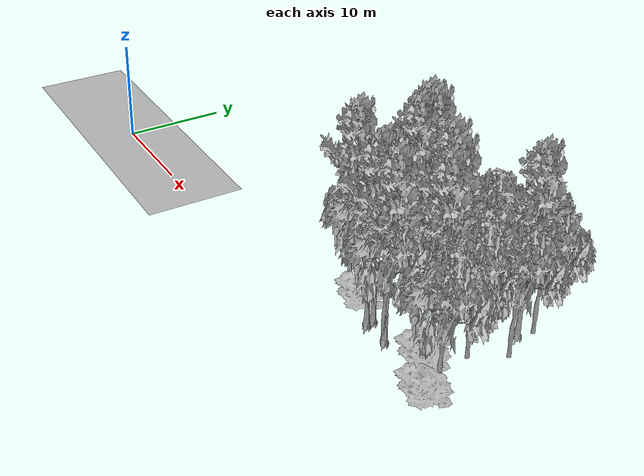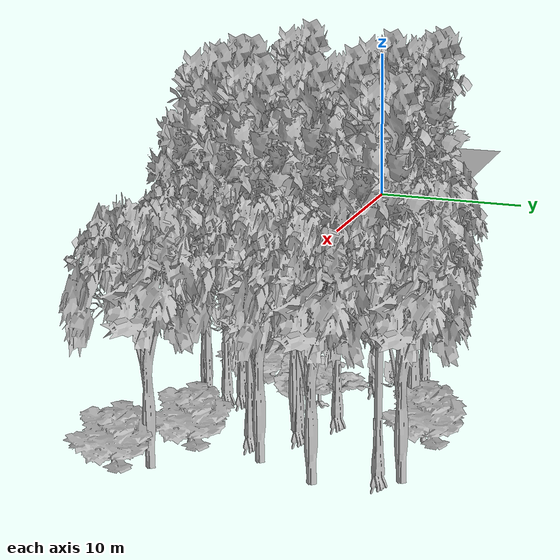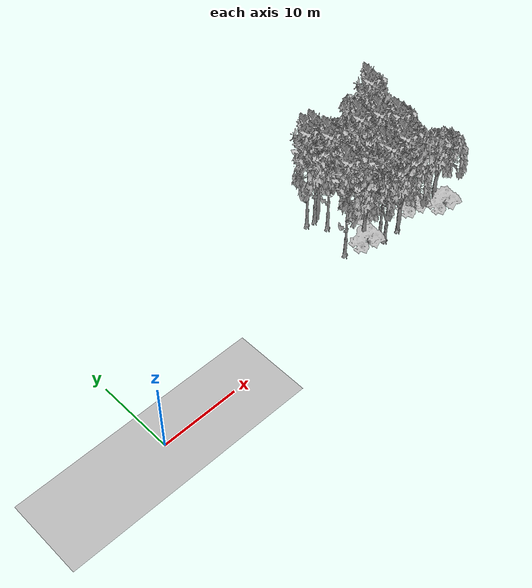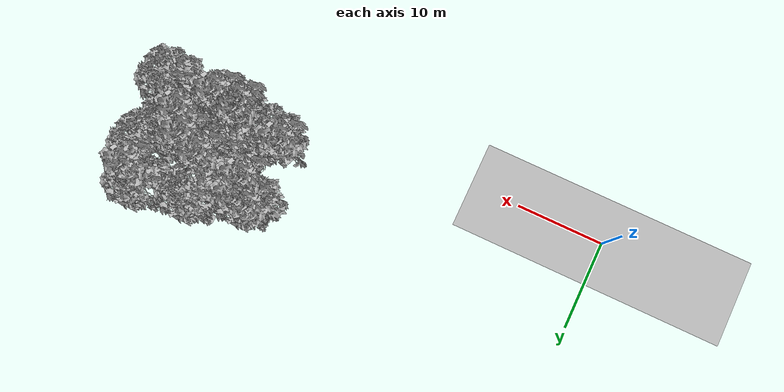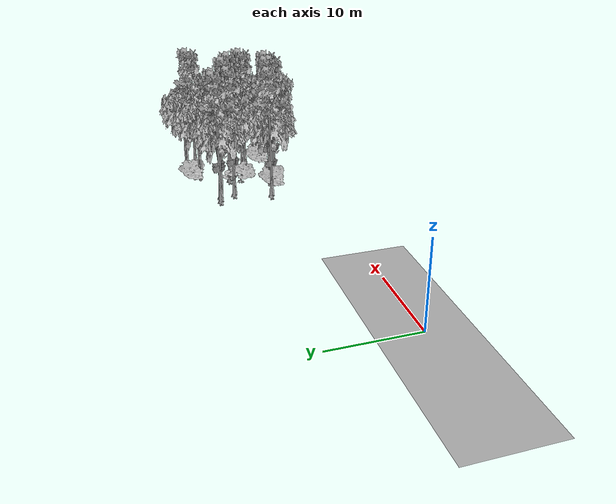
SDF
<sdf version="1.7">
 <world name="default">
  <model name="ground_plane">
   <static>1</static>
   <link name="link">
    <collision name="collision">
     <pose>-50 0 0 0 -0 0</pose>
     <geometry><plane><normal>0 0 1</normal><size>100 100</size></plane></geometry>
     <surface><contact><ode><min_depth>0.01</min_depth><max_vel>0</max_vel></ode></contact></surface>
    </collision>
    <visual name="grass">
     <cast_shadows>0</cast_shadows>
     <geometry>
      <mesh>
       <scale>0.5814285714285714 0.18142857142857144 0.1</scale>
       <uri>file://grass_plane/meshes/grass_plane.dae</uri>
      </mesh>
     </geometry>
    </visual>
   </link>
  </model>
  <model name="Tree 5">
   <static>1</static>
   <pose>36.21630514174534 5.332473233112477 0 1.57079 -0 0</pose>
   <link name="link">
    <collision name="collision">
     <geometry><mesh><scale>3.5 5 3.5</scale><uri>model://tree_2/meshes/tree_2.obj</uri></mesh></geometry>
    </collision>
    <visual name="visual">
     <geometry><mesh><scale>3.5 5 3.5</scale><uri>model://tree_2/meshes/tree_2.obj</uri></mesh></geometry>
    </visual>
   </link>
  </model>
  <model name="Tree 15">
   <static>1</static>
   <pose>45.743909206577584 13.819128659880295 0 1.57079 -0 0</pose>
   <link name="link">
    <collision name="collision">
     <geometry><mesh><scale>3.5 5 3.5</scale><uri>model://tree_9/meshes/tree_9.obj</uri></mesh></geometry>
    </collision>
    <visual name="visual">
     <geometry><mesh><scale>3.5 5 3.5</scale><uri>model://tree_9/meshes/tree_9.obj</uri></mesh></geometry>
    </visual>
   </link>
  </model>
  <model name="Tree 41">
   <static>1</static>
   <pose>38.863710387850574 4.051645350260188 0 1.57079 -0 0</pose>
   <link name="link">
    <collision name="collision">
     <geometry><mesh><scale>3.5 5 3.5</scale><uri>model://tree_9/meshes/tree_9.obj</uri></mesh></geometry>
    </collision>
    <visual name="visual">
     <geometry><mesh><scale>3.5 5 3.5</scale><uri>model://tree_9/meshes/tree_9.obj</uri></mesh></geometry>
    </visual>
   </link>
  </model>
  <model name="Tree 45">
   <static>1</static>
   <pose>47.43371381314944 11.400774031397113 0 1.57079 -0 0</pose>
   <link name="link">
    <collision name="collision">
     <geometry><mesh><scale>3.5 5 3.5</scale><uri>model://tree_2/meshes/tree_2.obj</uri></mesh></geometry>
    </collision>
    <visual name="visual">
     <geometry><mesh><scale>3.5 5 3.5</scale><uri>model://tree_2/meshes/tree_2.obj</uri></mesh></geometry>
    </visual>
   </link>
  </model>
  <model name="Tree 46">
   <static>1</static>
   <pose>47.99540978927405 4.198214944029758 0 1.57079 -0 0</pose>
   <link name="link">
    <collision name="collision">
     <geometry><mesh><scale>3.5 5 3.5</scale><uri>model://tree_2/meshes/tree_2.obj</uri></mesh></geometry>
    </collision>
    <visual name="visual">
     <geometry><mesh><scale>3.5 5 3.5</scale><uri>model://tree_2/meshes/tree_2.obj</uri></mesh></geometry>
    </visual>
   </link>
  </model>
  <model name="Tree 65">
   <static>1</static>
   <pose>40.04931685662842 8.233871836158535 0 1.57079 -0 0</pose>
   <link name="link">
    <collision name="collision">
     <geometry><mesh><scale>3.5 5 3.5</scale><uri>model://tree_2/meshes/tree_2.obj</uri></mesh></geometry>
    </collision>
    <visual name="visual">
     <geometry><mesh><scale>3.5 5 3.5</scale><uri>model://tree_2/meshes/tree_2.obj</uri></mesh></geometry>
    </visual>
   </link>
  </model>
  <model name="Tree 84">
   <static>1</static>
   <pose>41.149014207927564 4.016690915062323 0 1.57079 -0 0</pose>
   <link name="link">
    <collision name="collision">
     <geometry><mesh><scale>3.5 5 3.5</scale><uri>model://tree_2/meshes/tree_2.obj</uri></mesh></geometry>
    </collision>
    <visual name="visual">
     <geometry><mesh><scale>3.5 5 3.5</scale><uri>model://tree_2/meshes/tree_2.obj</uri></mesh></geometry>
    </visual>
   </link>
  </model>
  <model name="Tree 88">
   <static>1</static>
   <pose>36.313175300013626 4.6640929231290755 0 1.57079 -0 0</pose>
   <link name="link">
    <collision name="collision">
     <geometry><mesh><scale>3 2 3</scale><uri>model://tree_3/meshes/tree_3.obj</uri></mesh></geometry>
    </collision>
    <visual name="visual">
     <geometry><mesh><scale>3 2 3</scale><uri>model://tree_3/meshes/tree_3.obj</uri></mesh></geometry>
    </visual>
   </link>
  </model>
  <model name="Tree 101">
   <static>1</static>
   <pose>42.22255837407289 8.932550092493571 0 1.57079 -0 0</pose>
   <link name="link">
    <collision name="collision">
     <geometry><mesh><scale>3.5 5 3.5</scale><uri>model://tree_9/meshes/tree_9.obj</uri></mesh></geometry>
    </collision>
    <visual name="visual">
     <geometry><mesh><scale>3.5 5 3.5</scale><uri>model://tree_9/meshes/tree_9.obj</uri></mesh></geometry>
    </visual>
   </link>
  </model>
  <model name="Tree 116">
   <static>1</static>
   <pose>33.75630688984256 12.523811955233146 0 1.57079 -0 0</pose>
   <link name="link">
    <collision name="collision">
     <geometry><mesh><scale>3.5 5 3.5</scale><uri>model://tree_9/meshes/tree_9.obj</uri></mesh></geometry>
    </collision>
    <visual name="visual">
     <geometry><mesh><scale>3.5 5 3.5</scale><uri>model://tree_9/meshes/tree_9.obj</uri></mesh></geometry>
    </visual>
   </link>
  </model>
  <model name="Tree 117">
   <static>1</static>
   <pose>43.53722144878333 7.089932362946783 0 1.57079 -0 0</pose>
   <link name="link">
    <collision name="collision">
     <geometry><mesh><scale>3.5 5 3.5</scale><uri>model://tree_9/meshes/tree_9.obj</uri></mesh></geometry>
    </collision>
    <visual name="visual">
     <geometry><mesh><scale>3.5 5 3.5</scale><uri>model://tree_9/meshes/tree_9.obj</uri></mesh></geometry>
    </visual>
   </link>
  </model>
  <model name="Tree 121">
   <static>1</static>
   <pose>40.674056603506884 13.954637770481654 0 1.57079 -0 0</pose>
   <link name="link">
    <collision name="collision">
     <geometry><mesh><scale>3.5 5 3.5</scale><uri>model://tree_2/meshes/tree_2.obj</uri></mesh></geometry>
    </collision>
    <visual name="visual">
     <geometry><mesh><scale>3.5 5 3.5</scale><uri>model://tree_2/meshes/tree_2.obj</uri></mesh></geometry>
    </visual>
   </link>
  </model>
  <model name="Tree 134">
   <static>1</static>
   <pose>34.9317361453118 12.344962153525117 0 1.57079 -0 0</pose>
   <link name="link">
    <collision name="collision">
     <geometry><mesh><scale>3.5 5 3.5</scale><uri>model://tree_9/meshes/tree_9.obj</uri></mesh></geometry>
    </collision>
    <visual name="visual">
     <geometry><mesh><scale>3.5 5 3.5</scale><uri>model://tree_9/meshes/tree_9.obj</uri></mesh></geometry>
    </visual>
   </link>
  </model>
  <model name="Tree 160">
   <static>1</static>
   <pose>42.19134666389519 8.791090269132138 0 1.57079 -0 0</pose>
   <link name="link">
    <collision name="collision">
     <geometry><mesh><scale>3.5 5 3.5</scale><uri>model://tree_2/meshes/tree_2.obj</uri></mesh></geometry>
    </collision>
    <visual name="visual">
     <geometry><mesh><scale>3.5 5 3.5</scale><uri>model://tree_2/meshes/tree_2.obj</uri></mesh></geometry>
    </visual>
   </link>
  </model>
  <model name="Tree 162">
   <static>1</static>
   <pose>41.29631861945818 4.112955242964116 0 1.57079 -0 0</pose>
   <link name="link">
    <collision name="collision">
     <geometry><mesh><scale>3.5 5 3.5</scale><uri>model://tree_9/meshes/tree_9.obj</uri></mesh></geometry>
    </collision>
    <visual name="visual">
     <geometry><mesh><scale>3.5 5 3.5</scale><uri>model://tree_9/meshes/tree_9.obj</uri></mesh></geometry>
    </visual>
   </link>
  </model>
  <model name="Tree 163">
   <static>1</static>
   <pose>35.25127912208559 12.166618940330412 0 1.57079 -0 0</pose>
   <link name="link">
    <collision name="collision">
     <geometry><mesh><scale>3.5 5 3.5</scale><uri>model://tree_2/meshes/tree_2.obj</uri></mesh></geometry>
    </collision>
    <visual name="visual">
     <geometry><mesh><scale>3.5 5 3.5</scale><uri>model://tree_2/meshes/tree_2.obj</uri></mesh></geometry>
    </visual>
   </link>
  </model>
  <model name="Tree 171">
   <static>1</static>
   <pose>38.83019356078249 8.770595952194704 0 1.57079 -0 0</pose>
   <link name="link">
    <collision name="collision">
     <geometry><mesh><scale>4 2.5 4</scale><uri>model://tree_1/meshes/tree_1.obj</uri></mesh></geometry>
    </collision>
    <visual name="visual">
     <geometry><mesh><scale>4 2.5 4</scale><uri>model://tree_1/meshes/tree_1.obj</uri></mesh></geometry>
    </visual>
   </link>
  </model>
  <model name="Tree 194">
   <static>1</static>
   <pose>40.02133976003418 10.060795207848319 0 1.57079 -0 0</pose>
   <link name="link">
    <collision name="collision">
     <geometry><mesh><scale>3.5 5 3.5</scale><uri>model://tree_9/meshes/tree_9.obj</uri></mesh></geometry>
    </collision>
    <visual name="visual">
     <geometry><mesh><scale>3.5 5 3.5</scale><uri>model://tree_9/meshes/tree_9.obj</uri></mesh></geometry>
    </visual>
   </link>
  </model>
  <model name="Tree 217">
   <static>1</static>
   <pose>48.06106144296264 2.4507313043396373 0 1.57079 -0 0</pose>
   <link name="link">
    <collision name="collision">
     <geometry><mesh><scale>3 2 3</scale><uri>model://tree_3/meshes/tree_3.obj</uri></mesh></geometry>
    </collision>
    <visual name="visual">
     <geometry><mesh><scale>3 2 3</scale><uri>model://tree_3/meshes/tree_3.obj</uri></mesh></geometry>
    </visual>
   </link>
  </model>
  <model name="Tree 236">
   <static>1</static>
   <pose>38.71206672294885 4.784008073201658 0 1.57079 -0 0</pose>
   <link name="link">
    <collision name="collision">
     <geometry><mesh><scale>3.5 5 3.5</scale><uri>model://tree_9/meshes/tree_9.obj</uri></mesh></geometry>
    </collision>
    <visual name="visual">
     <geometry><mesh><scale>3.5 5 3.5</scale><uri>model://tree_9/meshes/tree_9.obj</uri></mesh></geometry>
    </visual>
   </link>
  </model>
  <model name="Tree 248">
   <static>1</static>
   <pose>45.975045522124404 8.500349978218694 0 1.57079 -0 0</pose>
   <link name="link">
    <collision name="collision">
     <geometry><mesh><scale>3.5 5 3.5</scale><uri>model://tree_2/meshes/tree_2.obj</uri></mesh></geometry>
    </collision>
    <visual name="visual">
     <geometry><mesh><scale>3.5 5 3.5</scale><uri>model://tree_2/meshes/tree_2.obj</uri></mesh></geometry>
    </visual>
   </link>
  </model>
  <model name="Tree 259">
   <static>1</static>
   <pose>35.278243166358436 10.418387044951945 0 1.57079 -0 0</pose>
   <link name="link">
    <collision name="collision">
     <geometry><mesh><scale>3.5 5 3.5</scale><uri>model://tree_9/meshes/tree_9.obj</uri></mesh></geometry>
    </collision>
    <visual name="visual">
     <geometry><mesh><scale>3.5 5 3.5</scale><uri>model://tree_9/meshes/tree_9.obj</uri></mesh></geometry>
    </visual>
   </link>
  </model>
  <model name="Tree 273">
   <static>1</static>
   <pose>46.130643944513 14.98167895011698 0 1.57079 -0 0</pose>
   <link name="link">
    <collision name="collision">
     <geometry><mesh><scale>3.5 5 3.5</scale><uri>model://tree_2/meshes/tree_2.obj</uri></mesh></geometry>
    </collision>
    <visual name="visual">
     <geometry><mesh><scale>3.5 5 3.5</scale><uri>model://tree_2/meshes/tree_2.obj</uri></mesh></geometry>
    </visual>
   </link>
  </model>
  <model name="Tree 276">
   <static>1</static>
   <pose>41.4942458417336 14.641051512787676 0 1.57079 -0 0</pose>
   <link name="link">
    <collision name="collision">
     <geometry><mesh><scale>3 2 3</scale><uri>model://tree_3/meshes/tree_3.obj</uri></mesh></geometry>
    </collision>
    <visual name="visual">
     <geometry><mesh><scale>3 2 3</scale><uri>model://tree_3/meshes/tree_3.obj</uri></mesh></geometry>
    </visual>
   </link>
  </model>
  <model name="Tree 280">
   <static>1</static>
   <pose>33.592058658618825 5.800345484768865 0 1.57079 -0 0</pose>
   <link name="link">
    <collision name="collision">
     <geometry><mesh><scale>3.5 5 3.5</scale><uri>model://tree_9/meshes/tree_9.obj</uri></mesh></geometry>
    </collision>
    <visual name="visual">
     <geometry><mesh><scale>3.5 5 3.5</scale><uri>model://tree_9/meshes/tree_9.obj</uri></mesh></geometry>
    </visual>
   </link>
  </model>
  <model name="Tree 290">
   <static>1</static>
   <pose>44.8938982537169 4.696156605359295 0 1.57079 -0 0</pose>
   <link name="link">
    <collision name="collision">
     <geometry><mesh><scale>3 2 3</scale><uri>model://tree_3/meshes/tree_3.obj</uri></mesh></geometry>
    </collision>
    <visual name="visual">
     <geometry><mesh><scale>3 2 3</scale><uri>model://tree_3/meshes/tree_3.obj</uri></mesh></geometry>
    </visual>
   </link>
  </model>
 </world>
</sdf>
